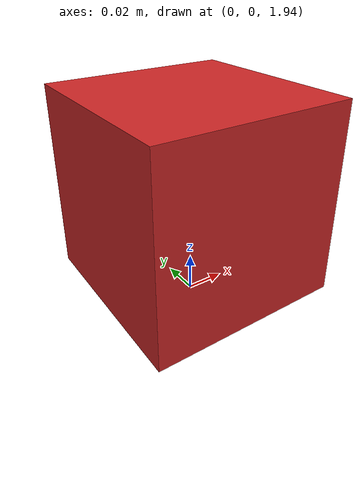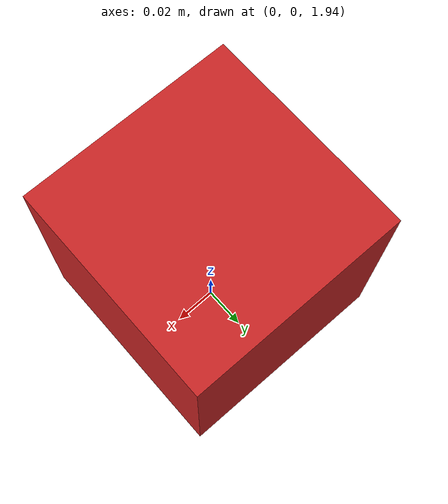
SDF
<?xml version="1.0" ?>

<!-- Refs: http://gazebosim.org/tutorials?tut=camera_save http://gazebosim.org/tutorials?tut=ros_gzplugins#Camera
  http://wiki.ros.org/image_view -->

<sdf version="1.5">
  <model name='camera'>
    <static>true</static>
    <pose>0 0 2 -1.57 1.57 0</pose>
    <link name='camera_link'>
      <visual name='visual'>
        <geometry>
          <box>
            <size>0.1 0.1 0.1</size>
          </box>
        </geometry>
        <material>
          <script>
            <name>Gazebo/Red</name>
            <uri>file://media/materials/scripts/gazebo.material</uri>
          </script>
        </material>
      </visual>

      <sensor name='camera_sensor' type='camera'>
        <camera>
          <horizontal_fov>1.047</horizontal_fov>
          <image>
            <width>800</width>
            <height>600</height>
          </image>
          <clip>
            <near>0.1</near>
            <far>100</far>
          </clip>
        </camera>
        <always_on>1</always_on>
        <update_rate>60</update_rate>

        <plugin name="camera_controller" filename="libgazebo_ros_camera.so">
          <alwaysOn>true</alwaysOn>
          <updateRate>60.0</updateRate>
          <cameraName>field_camera</cameraName>
          <imageTopicName>/camera/image_raw</imageTopicName>
          <cameraInfoTopicName>/camera/camera_info</cameraInfoTopicName>
          <frameName>camera_link</frameName>
          <hackBaseline>0.07</hackBaseline>
          <distortionK1>0.0</distortionK1>
          <distortionK2>0.0</distortionK2>
          <distortionK3>0.0</distortionK3>
          <distortionT1>0.0</distortionT1>
          <distortionT2>0.0</distortionT2>
        </plugin>
      </sensor>
    </link>
  </model>
</sdf>
